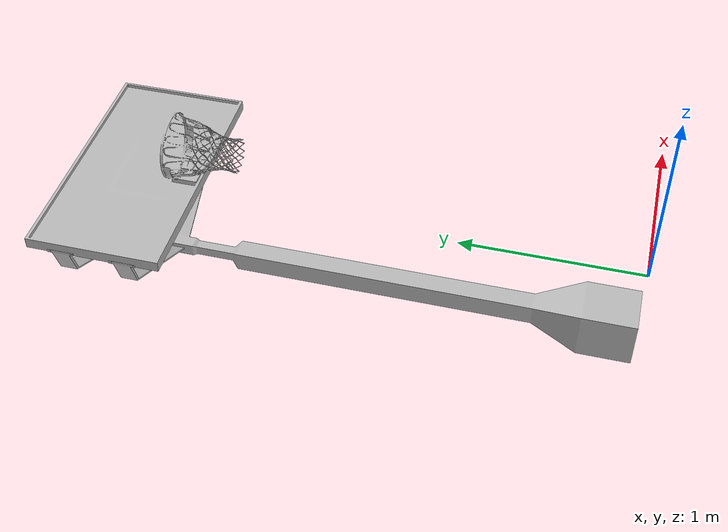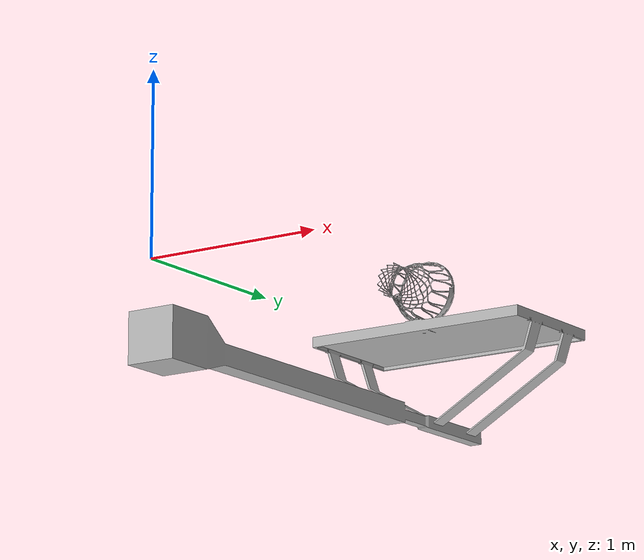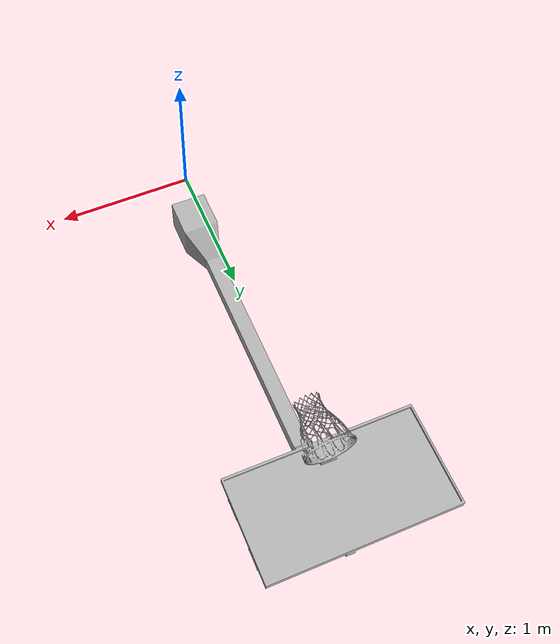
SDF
<?xml version="1.0" ?>
<sdf version="1.5">
  <model name="basketball_hoop">
    <static>true</static>
    <link name="link">
      <collision name="collision">
        <geometry>
          <mesh>
            <uri>model://basketball_hoop/meshes/basketball_hoop_etsi.obj</uri>
            <scale>0.333 0.333 0.333</scale>
          </mesh>
        </geometry>
      </collision>
      <visual name="visual">
        <geometry>
          <mesh>
            <uri>model://basketball_hoop/meshes/basketball_hoop_etsi.obj</uri>
            <scale>0.333 0.333 0.333</scale>
          </mesh>
        </geometry>
      </visual>
    </link>
  </model>
</sdf>
